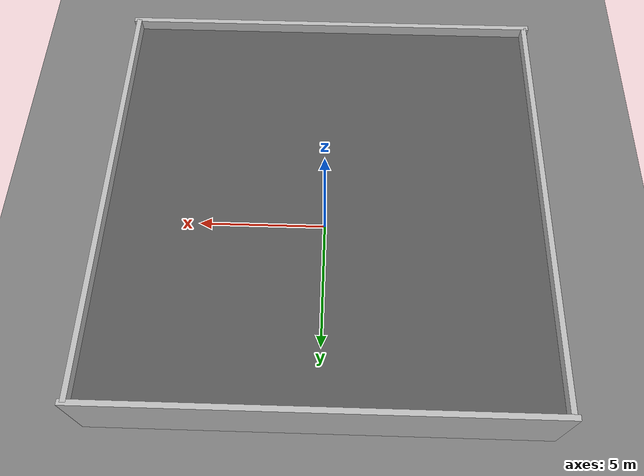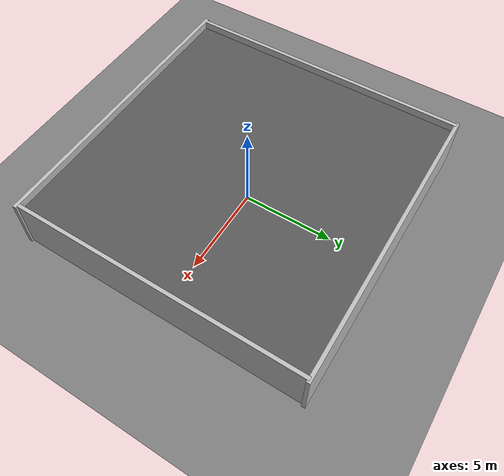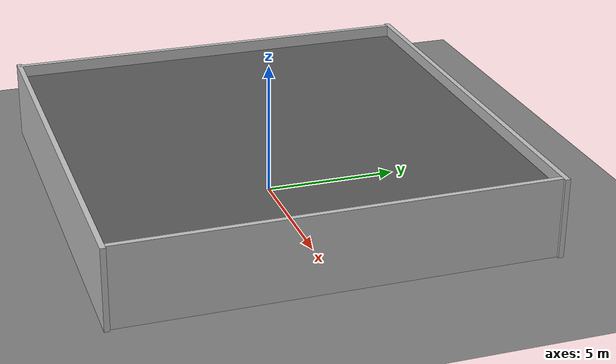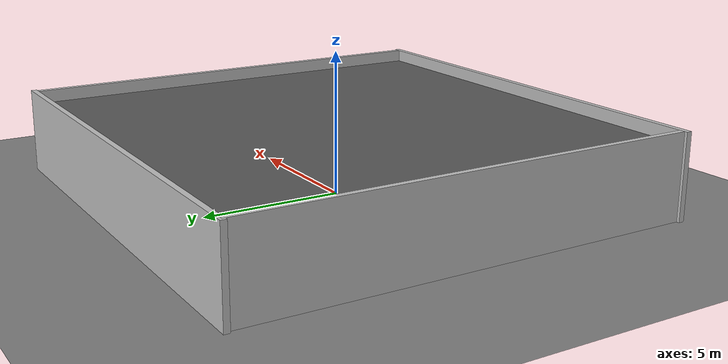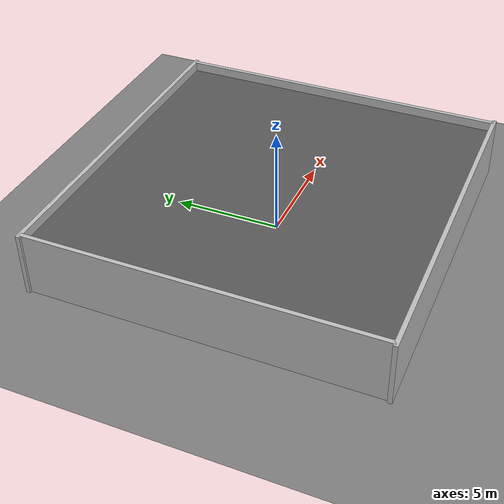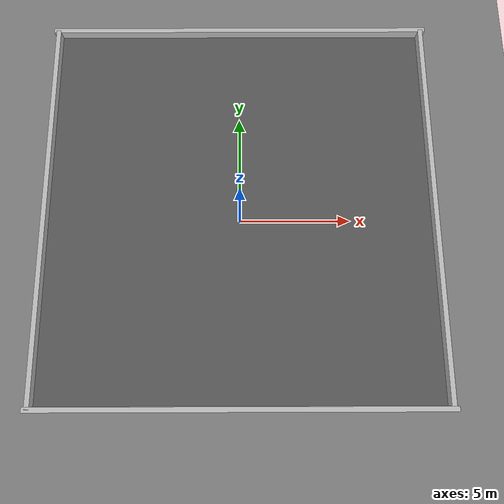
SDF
<?xml version="1.0" ?>
<sdf version="1.10">
  <world name="multi_room">

    <physics name="fast" type="ignored">
      <max_step_size>0.02</max_step_size>
      <real_time_factor>0</real_time_factor>
    </physics>

    <plugin filename="gz-sim-physics-system"       name="gz::sim::systems::Physics"/>
    <plugin filename="gz-sim-user-commands-system"  name="gz::sim::systems::UserCommands"/>
    <plugin filename="gz-sim-scene-broadcaster-system" name="gz::sim::systems::SceneBroadcaster"/>
    <plugin filename="gz-sim-sensors-system"       name="gz::sim::systems::Sensors">
      <render_engine>ogre2</render_engine>
    </plugin>
    <plugin filename="gz-sim-imu-system"           name="gz::sim::systems::Imu"/>
    <plugin filename="gz-sim-contact-system"       name="gz::sim::systems::Contact"/>

    <gravity>0 0 -9.81</gravity>

    <light type="directional" name="sun">
      <cast_shadows>true</cast_shadows>
      <pose>0 0 10 0 0 0</pose>
      <diffuse>0.9 0.9 0.9 1</diffuse>
      <specular>0.2 0.2 0.2 1</specular>
      <direction>-0.5 0.1 -0.9</direction>
    </light>

    <model name="ground_plane">
      <static>true</static>
      <link name="link">
        <collision name="collision">
          <geometry><plane><normal>0 0 1</normal><size>40 40</size></plane></geometry>
        </collision>
        <visual name="visual">
          <geometry><plane><normal>0 0 1</normal><size>40 40</size></plane></geometry>
          <material><ambient>0.4 0.4 0.4 1</ambient><diffuse>0.5 0.5 0.5 1</diffuse></material>
        </visual>
      </link>
    </model>

    <model name="building">
      <static>true</static>

      <!-- Dis duvarlar -->
      <link name="wall_n">
        <pose>0 8 1.5 0 0 0</pose>
        <collision name="c"><geometry><box><size>16.4 0.2 3</size></box></geometry></collision>
        <visual name="v"><geometry><box><size>16.4 0.2 3</size></box></geometry>
          <material><ambient>0.75 0.75 0.75 1</ambient><diffuse>0.75 0.75 0.75 1</diffuse></material></visual>
      </link>
      <link name="wall_s">
        <pose>0 -8 1.5 0 0 0</pose>
        <collision name="c"><geometry><box><size>16.4 0.2 3</size></box></geometry></collision>
        <visual name="v"><geometry><box><size>16.4 0.2 3</size></box></geometry>
          <material><ambient>0.75 0.75 0.75 1</ambient><diffuse>0.75 0.75 0.75 1</diffuse></material></visual>
      </link>
      <link name="wall_w">
        <pose>-8 0 1.5 0 0 0</pose>
        <collision name="c"><geometry><box><size>0.2 16 3</size></box></geometry></collision>
        <visual name="v"><geometry><box><size>0.2 16 3</size></box></geometry>
          <material><ambient>0.75 0.75 0.75 1</ambient><diffuse>0.75 0.75 0.75 1</diffuse></material></visual>
      </link>
      <link name="wall_e">
        <pose>8 0 1.5 0 0 0</pose>
        <collision name="c"><geometry><box><size>0.2 16 3</size></box></geometry></collision>
        <visual name="v"><geometry><box><size>0.2 16 3</size></box></geometry>
          <material><ambient>0.75 0.75 0.75 1</ambient><diffuse>0.75 0.75 0.75 1</diffuse></material></visual>
      </link>

      <!-- Tavan -->
      <link name="roof">
        <pose>0 0 2.5 0 0 0</pose>
        <collision name="c"><geometry><box><size>16 16 0.1</size></box></geometry></collision>
        <visual name="v"><geometry><box><size>16 16 0.1</size></box></geometry>
          <material><ambient>0.3 0.3 0.3 1</ambient><diffuse>0.35 0.35 0.35 1</diffuse></material></visual>
      </link>

      <!-- Sol dikey duvar (x=-2), kapi y in [-5,-1] (4m genis) — arttirildi -->
      <link name="lwall_bot">
        <pose>-2 -6.5 1.15 0 0 0</pose>
        <collision name="c"><geometry><box><size>0.2 3.0 2.3</size></box></geometry></collision>
        <visual name="v"><geometry><box><size>0.2 3.0 2.3</size></box></geometry>
          <material><ambient>0.5 0.5 0.65 1</ambient><diffuse>0.55 0.55 0.7 1</diffuse></material></visual>
      </link>
      <link name="lwall_top">
        <pose>-2 3.5 1.15 0 0 0</pose>
        <collision name="c"><geometry><box><size>0.2 9.0 2.3</size></box></geometry></collision>
        <visual name="v"><geometry><box><size>0.2 9.0 2.3</size></box></geometry>
          <material><ambient>0.5 0.5 0.65 1</ambient><diffuse>0.55 0.55 0.7 1</diffuse></material></visual>
      </link>

      <!-- Sag dikey duvar (x=4), kapi y in [2,6] (4m genis) — arttirildi -->
      <link name="rwall_bot">
        <pose>4 -3 1.15 0 0 0</pose>
        <collision name="c"><geometry><box><size>0.2 10.0 2.3</size></box></geometry></collision>
        <visual name="v"><geometry><box><size>0.2 10.0 2.3</size></box></geometry>
          <material><ambient>0.5 0.5 0.65 1</ambient><diffuse>0.55 0.55 0.7 1</diffuse></material></visual>
      </link>
      <link name="rwall_top">
        <pose>4 7 1.15 0 0 0</pose>
        <collision name="c"><geometry><box><size>0.2 2.0 2.3</size></box></geometry></collision>
        <visual name="v"><geometry><box><size>0.2 2.0 2.3</size></box></geometry>
          <material><ambient>0.5 0.5 0.65 1</ambient><diffuse>0.55 0.55 0.7 1</diffuse></material></visual>
      </link>

      <link name="hwall_1">
        <pose>-6 0 1.15 0 0 0</pose>
        <collision name="c"><geometry><box><size>0.01 0.2 2.3</size></box></geometry></collision>
        <visual name="v"><geometry><box><size>0.01 0.2 2.3</size></box></geometry>
          <material><ambient>0.5 0.5 0.65 1</ambient><diffuse>0.55 0.55 0.7 1</diffuse></material></visual>
      </link>
      <link name="hwall_2">
        <pose>-3 0 1.15 0 0 0</pose>
        <collision name="c"><geometry><box><size>2.0 0.2 2.3</size></box></geometry></collision>
        <visual name="v"><geometry><box><size>2.0 0.2 2.3</size></box></geometry>
          <material><ambient>0.5 0.5 0.65 1</ambient><diffuse>0.55 0.55 0.7 1</diffuse></material></visual>
      </link>
      <link name="hwall_3">
        <pose>0 0 1.15 0 0 0</pose>
        <collision name="c"><geometry><box><size>0.01 0.2 2.3</size></box></geometry></collision>
        <visual name="v"><geometry><box><size>0.01 0.2 2.3</size></box></geometry>
          <material><ambient>0.5 0.5 0.65 1</ambient><diffuse>0.55 0.55 0.7 1</diffuse></material></visual>
      </link>
      <link name="hwall_4">
        <pose>3 0 1.15 0 0 0</pose>
        <collision name="c"><geometry><box><size>2.0 0.2 2.3</size></box></geometry></collision>
        <visual name="v"><geometry><box><size>2.0 0.2 2.3</size></box></geometry>
          <material><ambient>0.5 0.5 0.65 1</ambient><diffuse>0.55 0.55 0.7 1</diffuse></material></visual>
      </link>
      <link name="hwall_5">
        <pose>6 0 1.15 0 0 0</pose>
        <collision name="c"><geometry><box><size>0.01 0.2 2.3</size></box></geometry></collision>
        <visual name="v"><geometry><box><size>0.01 0.2 2.3</size></box></geometry>
          <material><ambient>0.5 0.5 0.65 1</ambient><diffuse>0.55 0.55 0.7 1</diffuse></material></visual>
      </link>
      <link name="hwall_6">
        <pose>7 0 1.15 0 0 0</pose>
        <collision name="c"><geometry><box><size>0.01 0.2 2.3</size></box></geometry></collision>
        <visual name="v"><geometry><box><size>0.01 0.2 2.3</size></box></geometry>
          <material><ambient>0.5 0.5 0.65 1</ambient><diffuse>0.55 0.55 0.7 1</diffuse></material></visual>
      </link>
    </model>

    <!-- Hareketli engeller — Python env tarafindan gz service ile tasinir -->
    <!-- Tum engeller z=1.25 merkezli, 2.5m yuksek — drone her irtifada carpar -->
    <!-- R0 icinde, y yonunde salinar -->
    <model name="obs_moving_1">
      <static>true</static>
      <pose>-5.0 -3.0 1.25 0 0 0</pose>
      <link name="l">
        <collision name="c"><geometry><cylinder><radius>0.3</radius><length>2.5</length></cylinder></geometry></collision>
        <visual name="v"><geometry><cylinder><radius>0.3</radius><length>2.5</length></cylinder></geometry>
          <material><ambient>0.85 0.2 0.2 1</ambient><diffuse>0.9 0.2 0.2 1</diffuse></material></visual>
      </link>
    </model>

    <!-- R4 icinde, x yonunde salinar -->
    <model name="obs_moving_2">
      <static>true</static>
      <pose>1.0 4.0 1.25 0 0 0</pose>
      <link name="l">
        <collision name="c"><geometry><box><size>0.7 0.7 2.5</size></box></geometry></collision>
        <visual name="v"><geometry><box><size>0.7 0.7 2.5</size></box></geometry>
          <material><ambient>0.2 0.7 0.2 1</ambient><diffuse>0.2 0.8 0.2 1</diffuse></material></visual>
      </link>
    </model>

    <!-- R2 icinde, y yonunde salinar -->
    <model name="obs_moving_3">
      <static>true</static>
      <pose>6.0 -4.0 1.25 0 0 0</pose>
      <link name="l">
        <collision name="c"><geometry><cylinder><radius>0.3</radius><length>2.5</length></cylinder></geometry></collision>
        <visual name="v"><geometry><cylinder><radius>0.3</radius><length>2.5</length></cylinder></geometry>
          <material><ambient>0.85 0.2 0.2 1</ambient><diffuse>0.9 0.2 0.2 1</diffuse></material></visual>
      </link>
    </model>

  </world>
</sdf>
